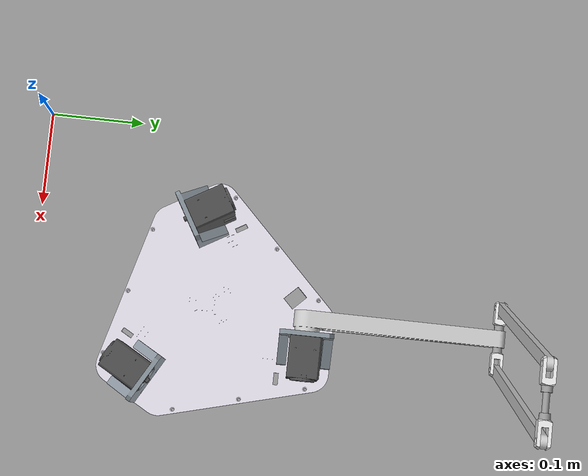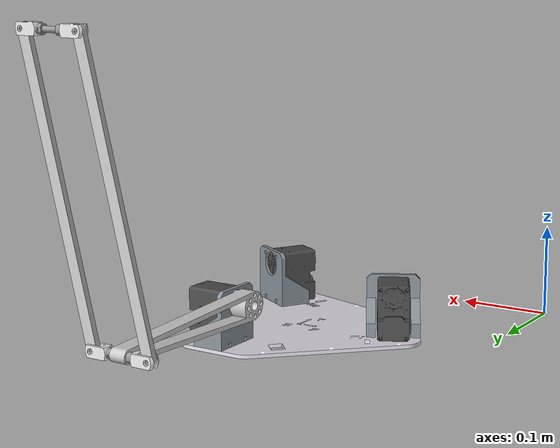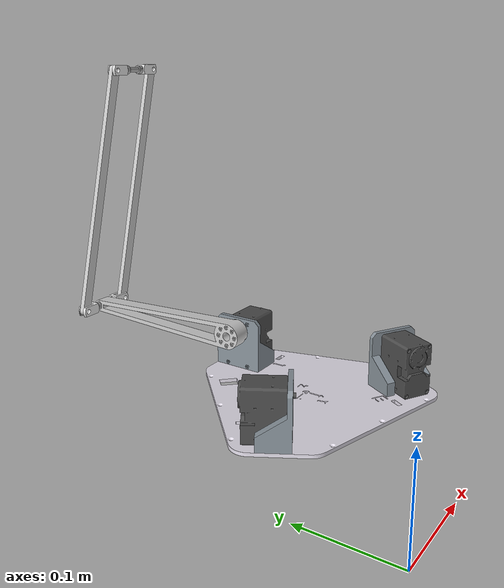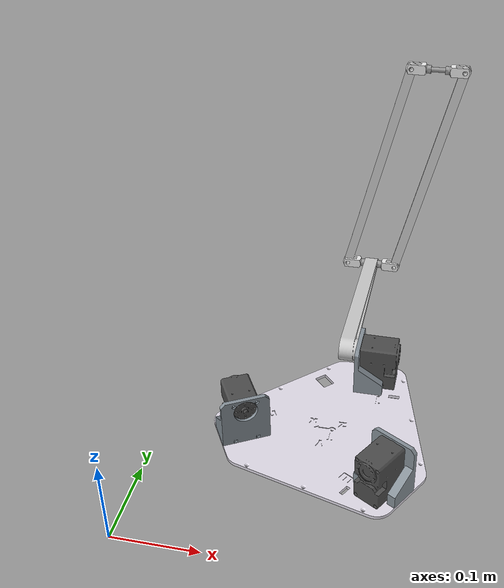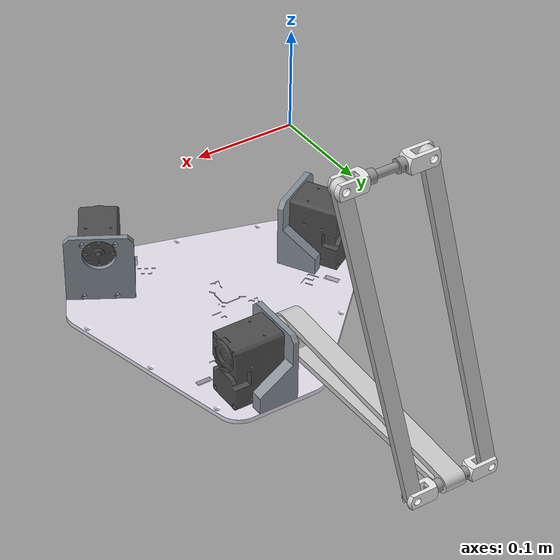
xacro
<?xml version="1.0"?>
<robot xmlns:xacro="http://www.ros.org/wiki/xacro" name="delta_robot">

    <!-- URDF for delta_robot -->

    <link name = "world"></link>

    <joint name="base_joint" type="fixed">
        <origin xyz="0.2 0.2 0.002" rpy="0 0 0"/>
        <parent link="world"/>
        <child link="base_link"/>
    </joint>

    <link name="base_link">
    <visual>
    <origin xyz="-0.0001775152886902345295 0.00059761139126611462213 3.9031278209478159624e-18" rpy="-3.1069237988459197054e-17 -1.2338159842391658037e-18 2.0943951023931952626" />
    <geometry>
    <mesh filename="file://$(find delta_robot_description)/meshes/delta_robot/motor_mount.stl"/>
    </geometry>
    <material name="motor_mount_material">
    <color rgba="0.52941176470588235947 0.56862745098039213509 0.5999999999999999778 1.0"/>
    </material>
    </visual>
    <collision>
    <origin xyz="-0.0001775152886902345295 0.00059761139126611462213 3.9031278209478159624e-18" rpy="-3.1069237988459197054e-17 -1.2338159842391658037e-18 2.0943951023931952626" />
    <geometry>
    <mesh filename="file://$(find delta_robot_description)/meshes/delta_robot/motor_mount.stl"/>
    </geometry>
    </collision>
    <visual>
    <origin xyz="-0.00017751528869052596304 0.00059761139126590992476 0" rpy="-3.1245060190741023797e-18 7.8794511999392257785e-18 1.1520252971942095847e-17" />
    <geometry>
    <mesh filename="file://$(find delta_robot_description)/meshes/delta_robot/base_plate.stl"/>
    </geometry>
    <material name="base_plate_material">
    <color rgba="0.89019607843137249503 0.87058823529411766273 0.91764705882352937127 1.0"/>
    </material>
    </visual>
    <collision>
    <origin xyz="-0.00017751528869052596304 0.00059761139126590992476 0" rpy="-3.1245060190741023797e-18 7.8794511999392257785e-18 1.1520252971942095847e-17" />
    <geometry>
    <mesh filename="file://$(find delta_robot_description)/meshes/delta_robot/base_plate.stl"/>
    </geometry>
    </collision>
    <visual>
    <origin xyz="-0.00017751528869046004355 0.00059761139126590992476 2.168404344971008868e-19" rpy="-5.2615502926620004774e-18 -1.0876200827765725814e-18 -2.0943951023931957067" />
    <geometry>
    <mesh filename="file://$(find delta_robot_description)/meshes/delta_robot/motor_mount.stl"/>
    </geometry>
    <material name="motor_mount_material">
    <color rgba="0.52941176470588235947 0.56862745098039213509 0.5999999999999999778 1.0"/>
    </material>
    </visual>
    <collision>
    <origin xyz="-0.00017751528869046004355 0.00059761139126590992476 2.168404344971008868e-19" rpy="-5.2615502926620004774e-18 -1.0876200827765725814e-18 -2.0943951023931957067" />
    <geometry>
    <mesh filename="file://$(find delta_robot_description)/meshes/delta_robot/motor_mount.stl"/>
    </geometry>
    </collision>
    <visual>
    <origin xyz="0.066300025089752981367 -0.084259911111058363731 0.048749999999999980849" rpy="1.570796326794896558 7.5426738779609901913e-17 2.6179938779914917468" />
    <geometry>
    <mesh filename="file://$(find delta_robot_description)/meshes/delta_robot/dc13_x540_dummy.stl"/>
    </geometry>
    <material name="dc13_x540_dummy_material">
    <color rgba="0.30196078431372547213 0.30196078431372547213 0.30196078431372547213 1.0"/>
    </material>
    </visual>
    <collision>
    <origin xyz="0.066300025089752981367 -0.084259911111058363731 0.048749999999999980849" rpy="1.570796326794896558 7.5426738779609901913e-17 2.6179938779914917468" />
    <geometry>
    <mesh filename="file://$(find delta_robot_description)/meshes/delta_robot/dc13_x540_dummy.stl"/>
    </geometry>
    </collision>
    <visual>
    <origin xyz="0.040072484711309502847 0.10059761139126592588 0.048749999999999980849" rpy="1.570796326794896558 -3.1245093277965679993e-18 -1.570796326794896558" />
    <geometry>
    <mesh filename="file://$(find delta_robot_description)/meshes/delta_robot/dc13_x540_dummy.stl"/>
    </geometry>
    <material name="dc13_x540_dummy_material">
    <color rgba="0.30196078431372547213 0.30196078431372547213 0.30196078431372547213 1.0"/>
    </material>
    </visual>
    <collision>
    <origin xyz="0.040072484711309502847 0.10059761139126592588 0.048749999999999980849" rpy="1.570796326794896558 -3.1245093277965679993e-18 -1.570796326794896558" />
    <geometry>
    <mesh filename="file://$(find delta_robot_description)/meshes/delta_robot/dc13_x540_dummy.stl"/>
    </geometry>
    </collision>
    <visual>
    <origin xyz="-0.00017751528869055024917 0.00059761139126596196647 -2.168404344971008868e-19" rpy="-3.1245060190741016094e-18 -4.5041539453063956589e-18 -8.6736177751094725206e-17" />
    <geometry>
    <mesh filename="file://$(find delta_robot_description)/meshes/delta_robot/motor_mount.stl"/>
    </geometry>
    <material name="motor_mount_material">
    <color rgba="0.52941176470588235947 0.56862745098039213509 0.5999999999999999778 1.0"/>
    </material>
    </visual>
    <collision>
    <origin xyz="-0.00017751528869055024917 0.00059761139126596196647 -2.168404344971008868e-19" rpy="-3.1245060190741016094e-18 -4.5041539453063956589e-18 -8.6736177751094725206e-17" />
    <geometry>
    <mesh filename="file://$(find delta_robot_description)/meshes/delta_robot/motor_mount.stl"/>
    </geometry>
    </collision>
    <visual>
    <origin xyz="-0.10690505566713494334 -0.014544866106409846257 0.048749999999999994726" rpy="1.570796326794896558 -3.1069237988459141588e-17 0.52359877559830247939" />
    <geometry>
    <mesh filename="file://$(find delta_robot_description)/meshes/delta_robot/dc13_x540_dummy.stl"/>
    </geometry>
    <material name="dc13_x540_dummy_material">
    <color rgba="0.30196078431372547213 0.30196078431372547213 0.30196078431372547213 1.0"/>
    </material>
    </visual>
    <collision>
    <origin xyz="-0.10690505566713494334 -0.014544866106409846257 0.048749999999999994726" rpy="1.570796326794896558 -3.1069237988459141588e-17 0.52359877559830247939" />
    <geometry>
    <mesh filename="file://$(find delta_robot_description)/meshes/delta_robot/dc13_x540_dummy.stl"/>
    </geometry>
    </collision>
    <inertial>
    <origin xyz="-0.00016122483469887020305 0.00055229382476998899187 0.030796178444245096012" rpy="0 0 0"/>
    <mass value="2.2633912012388961443" />
    <inertia ixx="0.013699240615172064012" ixy="-2.8956553318720389817e-06"  ixz="1.0541336563802143535e-06" iyy="0.013707418413198568102" iyz="-2.9603162574546104733e-06" izz="0.025879112491365686977" />
    </inertial>
    </link>

    <link name="bicep_rod">
    <visual>
    <origin xyz="-0.099999999999999977796 6.9388939039072283776e-18 -0.015750000000000000111" rpy="1.570796326794896558 -1.2460696958894511463e-31 -1.3530835845824207525e-18" />
    <geometry>
    <mesh filename="file://$(find delta_robot_description)/meshes/delta_robot/bicep_rod.stl"/>
    </geometry>
    <material name="bicep_rod_material">
    <color rgba="0.80000000000000004441 0.80000000000000004441 0.80000000000000004441 1.0"/>
    </material>
    </visual>
    <collision>
    <origin xyz="-0.099999999999999977796 6.9388939039072283776e-18 -0.015750000000000000111" rpy="1.570796326794896558 -1.2460696958894511463e-31 -1.3530835845824207525e-18" />
    <geometry>
    <mesh filename="file://$(find delta_robot_description)/meshes/delta_robot/bicep_rod.stl"/>
    </geometry>
    </collision>
    <inertial>
    <origin xyz="-0.078081968111977914648 -8.4155794501061477637e-17 -0.014997482893929825476" rpy="0 0 0"/>
    <mass value="0.050961850551235823858" />
    <inertia ixx="5.2079917158922480535e-06" ixy="-1.2321711599573585462e-22"  ixz="-2.9944172647275547383e-06" iyy="0.00024166052430367850339" iyz="4.0516968462893711394e-24" izz="0.00024357414644567967552" />
    </inertial>
    </link>

    <link name="connecting_element">
    <visual>
    <origin xyz="0 0 0" rpy="3.141592653589793116 7.0869467081710430223e-33 1.1992540394767982998e-34" />
    <geometry>
    <mesh filename="file://$(find delta_robot_description)/meshes/delta_robot/connecting_element.stl"/>
    </geometry>
    <material name="connecting_element_material">
    <color rgba="0.5999999999999999778 0.5999999999999999778 0.5999999999999999778 1.0"/>
    </material>
    </visual>
    <collision>
    <origin xyz="0 0 0" rpy="3.141592653589793116 7.0869467081710430223e-33 1.1992540394767982998e-34" />
    <geometry>
    <mesh filename="file://$(find delta_robot_description)/meshes/delta_robot/connecting_element.stl"/>
    </geometry>
    </collision>
    <visual>
    <origin xyz="6.9388939039072283776e-18 -5.5511151231257827021e-17 -0.032749999999999987454" rpy="-2.3917901934806809389e-16 -1.5707963267948947816 0" />
    <geometry>
    <mesh filename="file://$(find delta_robot_description)/meshes/delta_robot/63755205_1.stl"/>
    </geometry>
    <material name="63755205_1_material">
    <color rgba="0.91764705882352937127 0.91764705882352937127 0.91764705882352937127 1.0"/>
    </material>
    </visual>
    <collision>
    <origin xyz="6.9388939039072283776e-18 -5.5511151231257827021e-17 -0.032749999999999987454" rpy="-2.3917901934806809389e-16 -1.5707963267948947816 0" />
    <geometry>
    <mesh filename="file://$(find delta_robot_description)/meshes/delta_robot/63755205_1.stl"/>
    </geometry>
    </collision>
    <visual>
    <origin xyz="0 -5.5511151231257827021e-17 -0.017750000000000005357" rpy="1.5707962596889331053 1.570796326794896558 0" />
    <geometry>
    <mesh filename="file://$(find delta_robot_description)/meshes/delta_robot/63755205_3.stl"/>
    </geometry>
    <material name="63755205_3_material">
    <color rgba="0.64705882352941179736 0.64705882352941179736 0.64705882352941179736 1.0"/>
    </material>
    </visual>
    <collision>
    <origin xyz="0 -5.5511151231257827021e-17 -0.017750000000000005357" rpy="1.5707962596889331053 1.570796326794896558 0" />
    <geometry>
    <mesh filename="file://$(find delta_robot_description)/meshes/delta_robot/63755205_3.stl"/>
    </geometry>
    </collision>
    <visual>
    <origin xyz="0 -5.5511151231257827021e-17 -0.020150000000000004713" rpy="1.5707963939008602328 -1.570796326794896558 0" />
    <geometry>
    <mesh filename="file://$(find delta_robot_description)/meshes/delta_robot/63755205_2.stl"/>
    </geometry>
    <material name="63755205_2_material">
    <color rgba="0.5999999999999999778 0.5999999999999999778 0.5999999999999999778 1.0"/>
    </material>
    </visual>
    <collision>
    <origin xyz="0 -5.5511151231257827021e-17 -0.020150000000000004713" rpy="1.5707963939008602328 -1.570796326794896558 0" />
    <geometry>
    <mesh filename="file://$(find delta_robot_description)/meshes/delta_robot/63755205_2.stl"/>
    </geometry>
    </collision>
    <visual>
    <origin xyz="6.9388939039072283776e-18 0 0.032749999999999980516" rpy="-3.141592653589793116 1.5707963267948947816 0" />
    <geometry>
    <mesh filename="file://$(find delta_robot_description)/meshes/delta_robot/63755205_1.stl"/>
    </geometry>
    <material name="63755205_1_material">
    <color rgba="0.91764705882352937127 0.91764705882352937127 0.91764705882352937127 1.0"/>
    </material>
    </visual>
    <collision>
    <origin xyz="6.9388939039072283776e-18 0 0.032749999999999980516" rpy="-3.141592653589793116 1.5707963267948947816 0" />
    <geometry>
    <mesh filename="file://$(find delta_robot_description)/meshes/delta_robot/63755205_1.stl"/>
    </geometry>
    </collision>
    <visual>
    <origin xyz="0 0 0.017750000000000005357" rpy="-1.5707962972486579911 -1.5707963267948947816 0" />
    <geometry>
    <mesh filename="file://$(find delta_robot_description)/meshes/delta_robot/63755205_3.stl"/>
    </geometry>
    <material name="63755205_3_material">
    <color rgba="0.64705882352941179736 0.64705882352941179736 0.64705882352941179736 1.0"/>
    </material>
    </visual>
    <collision>
    <origin xyz="0 0 0.017750000000000005357" rpy="-1.5707962972486579911 -1.5707963267948947816 0" />
    <geometry>
    <mesh filename="file://$(find delta_robot_description)/meshes/delta_robot/63755205_3.stl"/>
    </geometry>
    </collision>
    <visual>
    <origin xyz="0 0 0.020150000000000001243" rpy="-1.5707963563411353469 1.5707963267948947816 0" />
    <geometry>
    <mesh filename="file://$(find delta_robot_description)/meshes/delta_robot/63755205_2.stl"/>
    </geometry>
    <material name="63755205_2_material">
    <color rgba="0.5999999999999999778 0.5999999999999999778 0.5999999999999999778 1.0"/>
    </material>
    </visual>
    <collision>
    <origin xyz="0 0 0.020150000000000001243" rpy="-1.5707963563411353469 1.5707963267948947816 0" />
    <geometry>
    <mesh filename="file://$(find delta_robot_description)/meshes/delta_robot/63755205_2.stl"/>
    </geometry>
    </collision>
    <inertial>
    <origin xyz="-1.3905153366695095013e-08 -2.308353284840540696e-17 -1.8807546362910670964e-18" rpy="0 0 0"/>
    <mass value="0.043235391457957531025" />
    <inertia ixx="2.117741363524789722e-05" ixy="-1.6494616852492486666e-16"  ixz="3.1518994266090702598e-22" iyy="2.1049951816356455783e-05" iyz="4.4464792326091756164e-11" izz="1.0143582146042517235e-06" />
    </inertial>
    </link>

    <link name="forarm_rod">
    <visual>
    <origin xyz="2.7755575615628913511e-17 0.14999999999999996669 -0.0060000000000000053291" rpy="-1.570796326794896558 1.5123475901484657517e-33 -1.1256002290908234313e-17" />
    <geometry>
    <mesh filename="file://$(find delta_robot_description)/meshes/delta_robot/forarm_rod.stl"/>
    </geometry>
    <material name="forarm_rod_material">
    <color rgba="0.80000000000000004441 0.80000000000000004441 0.80000000000000004441 1.0"/>
    </material>
    </visual>
    <collision>
    <origin xyz="2.7755575615628913511e-17 0.14999999999999996669 -0.0060000000000000053291" rpy="-1.570796326794896558 1.5123475901484657517e-33 -1.1256002290908234313e-17" />
    <geometry>
    <mesh filename="file://$(find delta_robot_description)/meshes/delta_robot/forarm_rod.stl"/>
    </geometry>
    </collision>
    <inertial>
    <origin xyz="2.0380347027211559199e-17 0.14999999999999993894 -0.0030000000000000052666" rpy="0 0 0"/>
    <mass value="0.023080135190930266276" />
    <inertia ixx="0.00017907526073076087715" ixy="-2.0111421264872935679e-21"  ixz="-7.2905738603365938692e-37" iyy="3.4754053482994265995e-07" iyz="5.1537658524598139645e-37" izz="0.00017928432045444521957" />
    </inertial>
    </link>

    <link name="closing_arm1_1">
    <inertial>
    <origin xyz="0 0 0" rpy="0 0 0" />
    <mass value="1e-9" />
    <inertia ixx="0" ixy="0" ixz="0" iyy="0" iyz="0" izz="0" />
    </inertial>
    </link>
    <joint name="closing_arm1_1_frame" type="fixed">
    <origin xyz="-3.4694469519536141888e-18 0.29999999999999993339 0" rpy="-6.1343203009518076313e-33 1.5123475901484657517e-33 -1.1256002290908234313e-17" />
    <parent link="forarm_rod" />
    <child link="closing_arm1_1" />
    <axis xyz="0 0 0"/>
    </joint>

    <joint name="12_passive" type="revolute">
    <origin xyz="-1.5959455978986625269e-16 0.0030000000000003912426 0.032749999999999980516" rpy="1.570796326794896558 -1.3312356219938219493 3.1415926535897855665" />
    <parent link="connecting_element" />
    <child link="forarm_rod" />
    <axis xyz="0 0 1"/>
    <limit effort="1" velocity="20" lower="-0.52359877559829881566" upper="0.52359877559829881566"/>
    <joint_properties friction="0.0"/>
    </joint>

    <link name="forarm_rod_2">
    <visual>
    <origin xyz="2.7755575615628913511e-17 -0.14999999999999999445 -0.0060000000000000608402" rpy="-1.570796326794896558 -9.2693912206016785975e-33 -1.2425741953250421395e-17" />
    <geometry>
    <mesh filename="file://$(find delta_robot_description)/meshes/delta_robot/forarm_rod.stl"/>
    </geometry>
    <material name="forarm_rod_material">
    <color rgba="0.80000000000000004441 0.80000000000000004441 0.80000000000000004441 1.0"/>
    </material>
    </visual>
    <collision>
    <origin xyz="2.7755575615628913511e-17 -0.14999999999999999445 -0.0060000000000000608402" rpy="-1.570796326794896558 -9.2693912206016785975e-33 -1.2425741953250421395e-17" />
    <geometry>
    <mesh filename="file://$(find delta_robot_description)/meshes/delta_robot/forarm_rod.stl"/>
    </geometry>
    </collision>
    <inertial>
    <origin xyz="2.0380347027211559199e-17 -0.1500000000000000222 -0.0030000000000000603441" rpy="0 0 0"/>
    <mass value="0.023080135190930266276" />
    <inertia ixx="0.00017907526073076087715" ixy="-2.2216452063887184482e-21"  ixz="1.4978520173524902752e-36" iyy="3.4754053482994265995e-07" iyz="9.0275335856432666223e-37" izz="0.00017928432045444521957" />
    </inertial>
    </link>

    <link name="connecting_element_2">
    <visual>
    <origin xyz="0.032749999999999591938 0 0.0030000000000000581757" rpy="1.570796326794896558 -6.915229977385943091e-22 -1.5707963267948974462" />
    <geometry>
    <mesh filename="file://$(find delta_robot_description)/meshes/delta_robot/connecting_element.stl"/>
    </geometry>
    <material name="connecting_element_material">
    <color rgba="0.5999999999999999778 0.5999999999999999778 0.5999999999999999778 1.0"/>
    </material>
    </visual>
    <collision>
    <origin xyz="0.032749999999999591938 0 0.0030000000000000581757" rpy="1.570796326794896558 -6.915229977385943091e-22 -1.5707963267948974462" />
    <geometry>
    <mesh filename="file://$(find delta_robot_description)/meshes/delta_robot/connecting_element.stl"/>
    </geometry>
    </collision>
    <visual>
    <origin xyz="0 0 0.0030000000000000026645" rpy="-1.570796326794896558 3.9285558036016831504e-33 1.1520867648751419137e-31" />
    <geometry>
    <mesh filename="file://$(find delta_robot_description)/meshes/delta_robot/63755205_1.stl"/>
    </geometry>
    <material name="63755205_1_material">
    <color rgba="0.91764705882352937127 0.91764705882352937127 0.91764705882352937127 1.0"/>
    </material>
    </visual>
    <collision>
    <origin xyz="0 0 0.0030000000000000026645" rpy="-1.570796326794896558 3.9285558036016831504e-33 1.1520867648751419137e-31" />
    <geometry>
    <mesh filename="file://$(find delta_robot_description)/meshes/delta_robot/63755205_1.stl"/>
    </geometry>
    </collision>
    <visual>
    <origin xyz="0.014999999999999943934 5.5511151231257827021e-17 0.0029999999999999471534" rpy="8.0134857772396222189e-09 -4.6924223910221446444e-26 -3.141592653589793116" />
    <geometry>
    <mesh filename="file://$(find delta_robot_description)/meshes/delta_robot/63755205_3.stl"/>
    </geometry>
    <material name="63755205_3_material">
    <color rgba="0.64705882352941179736 0.64705882352941179736 0.64705882352941179736 1.0"/>
    </material>
    </visual>
    <collision>
    <origin xyz="0.014999999999999943934 5.5511151231257827021e-17 0.0029999999999999471534" rpy="8.0134857772396222189e-09 -4.6924223910221446444e-26 -3.141592653589793116" />
    <geometry>
    <mesh filename="file://$(find delta_robot_description)/meshes/delta_robot/63755205_3.stl"/>
    </geometry>
    </collision>
    <visual>
    <origin xyz="0.01259999999999999315 0 0.0030000000000000026645" rpy="-8.0134857772396222189e-09 4.6924223910221446444e-26 8.7101764804050194589e-28" />
    <geometry>
    <mesh filename="file://$(find delta_robot_description)/meshes/delta_robot/63755205_2.stl"/>
    </geometry>
    <material name="63755205_2_material">
    <color rgba="0.5999999999999999778 0.5999999999999999778 0.5999999999999999778 1.0"/>
    </material>
    </visual>
    <collision>
    <origin xyz="0.01259999999999999315 0 0.0030000000000000026645" rpy="-8.0134857772396222189e-09 4.6924223910221446444e-26 8.7101764804050194589e-28" />
    <geometry>
    <mesh filename="file://$(find delta_robot_description)/meshes/delta_robot/63755205_2.stl"/>
    </geometry>
    </collision>
    <visual>
    <origin xyz="0.065499999999998892442 0 0.0030000000000000581757" rpy="1.570796326794896558 3.0701093824491574819e-23 -3.141592653589793116" />
    <geometry>
    <mesh filename="file://$(find delta_robot_description)/meshes/delta_robot/63755205_1.stl"/>
    </geometry>
    <material name="63755205_1_material">
    <color rgba="0.91764705882352937127 0.91764705882352937127 0.91764705882352937127 1.0"/>
    </material>
    </visual>
    <collision>
    <origin xyz="0.065499999999998892442 0 0.0030000000000000581757" rpy="1.570796326794896558 3.0701093824491574819e-23 -3.141592653589793116" />
    <geometry>
    <mesh filename="file://$(find delta_robot_description)/meshes/delta_robot/63755205_1.stl"/>
    </geometry>
    </collision>
    <visual>
    <origin xyz="0.050499999999999233002 -1.1102230246251565404e-16 0.0030000000000001136868" rpy="3.141592645576306353 -3.1385939055972314215e-23 2.4767203673916650163e-17" />
    <geometry>
    <mesh filename="file://$(find delta_robot_description)/meshes/delta_robot/63755205_3.stl"/>
    </geometry>
    <material name="63755205_3_material">
    <color rgba="0.64705882352941179736 0.64705882352941179736 0.64705882352941179736 1.0"/>
    </material>
    </visual>
    <collision>
    <origin xyz="0.050499999999999233002 -1.1102230246251565404e-16 0.0030000000000001136868" rpy="3.141592645576306353 -3.1385939055972314215e-23 2.4767203673916650163e-17" />
    <geometry>
    <mesh filename="file://$(find delta_robot_description)/meshes/delta_robot/63755205_3.stl"/>
    </geometry>
    </collision>
    <visual>
    <origin xyz="0.052899999999999176847 -5.5511151231257827021e-17 0.0030000000000001136868" rpy="-3.141592645576306353 3.1385939055972314215e-23 -3.141592653589793116" />
    <geometry>
    <mesh filename="file://$(find delta_robot_description)/meshes/delta_robot/63755205_2.stl"/>
    </geometry>
    <material name="63755205_2_material">
    <color rgba="0.5999999999999999778 0.5999999999999999778 0.5999999999999999778 1.0"/>
    </material>
    </visual>
    <collision>
    <origin xyz="0.052899999999999176847 -5.5511151231257827021e-17 0.0030000000000001136868" rpy="-3.141592645576306353 3.1385939055972314215e-23 -3.141592653589793116" />
    <geometry>
    <mesh filename="file://$(find delta_robot_description)/meshes/delta_robot/63755205_2.stl"/>
    </geometry>
    </collision>
    <inertial>
    <origin xyz="0.032749999999999550304 1.3905153363353280375e-08 0.0030000000000000425632" rpy="0 0 0"/>
    <mass value="0.043235391457957531025" />
    <inertia ixx="1.0143582146042301241e-06" ixy="7.2029734615800834062e-21"  ixz="-4.446479236374541185e-11" iyy="2.1177413635247148443e-05" iyz="2.7351463048027148428e-17" izz="2.1049951816355798486e-05" />
    </inertial>
    </link>

    <link name="closing_arm1_2">
    <inertial>
    <origin xyz="0 0 0" rpy="0 0 0" />
    <mass value="1e-9" />
    <inertia ixx="0" ixy="0" ixz="0" iyy="0" iyz="0" izz="0" />
    </inertial>
    </link>
    <joint name="closing_arm1_2_frame" type="fixed">
    <origin xyz="0.065499999999998892442 0 1.1102230246251565404e-16" rpy="3.141592653589793116 -3.0701093824491574819e-23 2.4767203673916650163e-17" />
    <parent link="connecting_element_2" />
    <child link="closing_arm1_2" />
    <axis xyz="0 0 0"/>
    </joint>

    <joint name="14_passive" type="revolute">
    <origin xyz="-1.3877787807814456755e-17 -0.29999999999999993339 5.5511151231257827021e-17" rpy="-3.141592653589793116 -3.3246881643796303939e-19 -2.9020319487887582532" />
    <parent link="forarm_rod_2" />
    <child link="connecting_element_2" />
    <axis xyz="0 0 1"/>
    <limit effort="1" velocity="20" lower="-0.52359877559829881566" upper="0.52359877559829881566"/>
    <joint_properties friction="0.0"/>
    </joint>

    <joint name="13_passive" type="revolute">
    <origin xyz="-1.6653345369377348106e-16 0.0030000000000002802203 -0.032749999999999966638" rpy="-1.570796326794896558 1.3312356219938281665 -7.7545827997474715894e-15" />
    <parent link="connecting_element" />
    <child link="forarm_rod_2" />
    <axis xyz="0 0 1"/>
    <limit effort="1" velocity="20" lower="-0.52359877559829881566" upper="0.52359877559829881566"/>
    <joint_properties friction="0.0"/>
    </joint>

    <joint name="11_wheel" type="continuous">
    <origin xyz="-0.2000000000000002609 -2.0122792321330962295e-16 -0.015749999999999979294" rpy="-1.8262551998394623635e-15 2.3272302527077074766e-16 -1.5627224950883411569" />
    <parent link="bicep_rod" />
    <child link="connecting_element" />
    <axis xyz="0 0 1"/>
    <limit effort="1" velocity="20" />
    <joint_properties friction="0.0"/>
    </joint>

    <joint name="motor_1" type="revolute">
    <origin xyz="0.015572484711309449862 0.10059761139126591201 0.048749999999999987788" rpy="-1.57079632679489678 -0.0080738317065514441512 -1.5707963267948947816" />
    <parent link="base_link" />
    <child link="bicep_rod" />
    <axis xyz="0 0 1"/>
    <limit effort="1" velocity="20" lower="-0.52359877559829881566" upper="1.570796326794896558"/>
    <joint_properties friction="0.0"/>
    </joint>

</robot>
